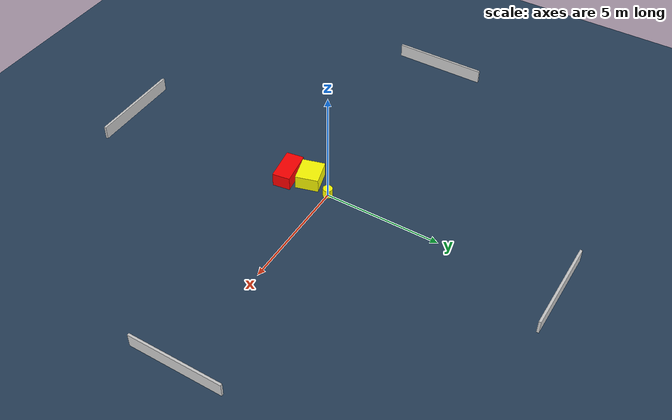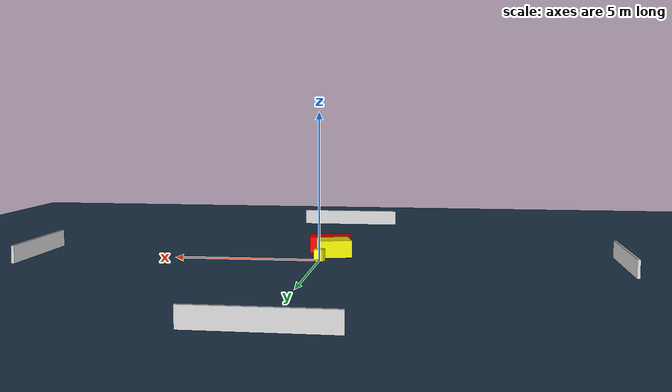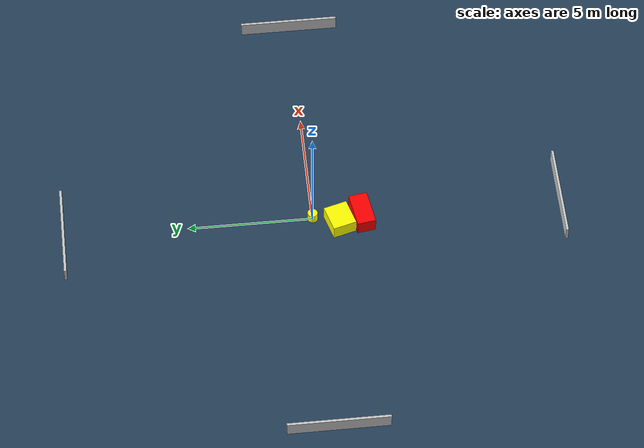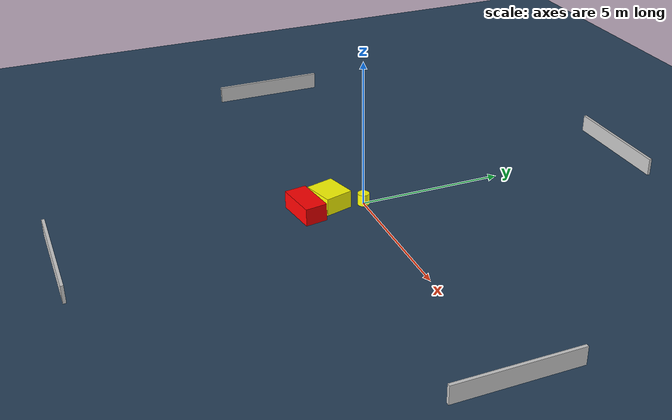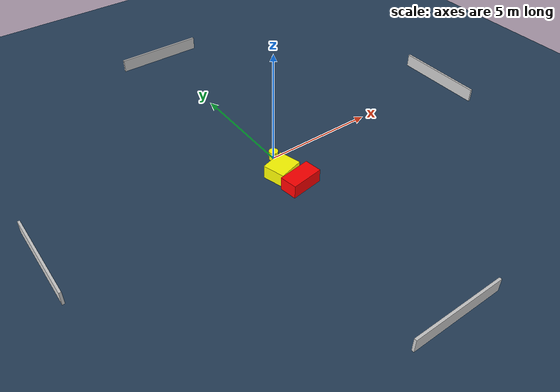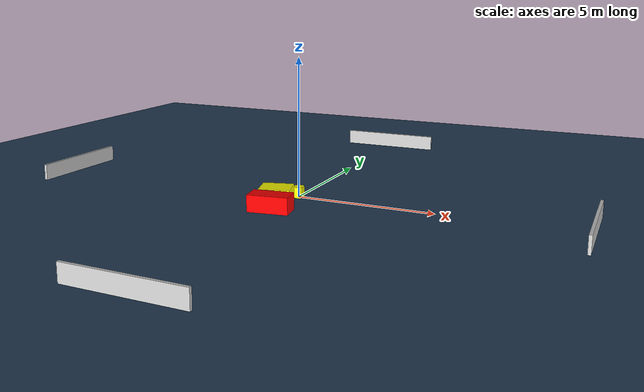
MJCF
<?xml version="1.0" ?>
<mujoco model="generated_environment">
  <option timestep="0.01" integrator="RK4" cone="elliptic"/>
  <default>
    <geom density="1"/>
  </default>
  <asset>
    <texture builtin="gradient" height="3072" name="skybox" rgb1="0.3 0.5 0.7" rgb2="0 0 0" type="skybox" width="512"/>
    <texture builtin="checker" height="300" name="groundplane" rgb1="0.2 0.3 0.4" rgb2="0.1 0.2 0.3" type="2d" width="300"/>
    <material name="groundplane" reflectance="0.2" texrepeat="5 5" texture="groundplane"/>
  </asset>
  <worldbody>
    <light dir="0 0 -1" directional="true" pos="0 0 1.5"/>
    <geom condim="3" friction="0.5 0.005 0.001" material="groundplane" name="floor" pos="0 0 0" size="0 0 0.05" type="plane"/>
    <body name="walls">
      <geom name="wall_1" condim="4" pos="-10.0 0.0 0.3" rgba="0.800000011920929 0.800000011920929 0.800000011920929 1.0" size="0.05 2.0 0.3" type="box"/>
      <geom name="wall_2" condim="4" pos="10.0 0.0 0.3" rgba="0.800000011920929 0.800000011920929 0.800000011920929 1.0" size="0.05 2.0 0.3" type="box"/>
      <geom name="wall_3" condim="4" pos="0.0 -10.0 0.3" rgba="0.800000011920929 0.800000011920929 0.800000011920929 1.0" size="2.0 0.05 0.3" type="box"/>
      <geom name="wall_4" condim="4" pos="0.0 10.0 0.3" rgba="0.800000011920929 0.800000011920929 0.800000011920929 1.0" size="2.0 0.05 0.3" type="box"/>
    </body>
    <body name="robot">
      <joint name="joint_x" type="slide" pos="0 0 0" axis="1 0 0"/>
      <joint name="joint_y" type="slide" pos="0 0 0" axis="0 1 0"/>
      <geom name="robot" type="cylinder" pos="0.0 0.0 0.2" size="0.2 0.2 0.0" mass="5.0" friction="1.0 0.005 0.0001" condim="4" rgba="1.0 1.0 0.0 1.0"/>
    </body>
    <body name="obstacle_1_movable">
      <geom name="obstacle_1_movable" condim="4" pos="-0.3633487770118672 -1.064908764776669 0.3" euler="0 0 195.8069002785018" friction="0.0 0.005 0.001" rgba="1.0 1.0 0.0 1.0" size="0.5524067666105992 0.4849698000892655 0.3" type="box" mass="0.1"/>
      <joint type="free"/>
    </body>
    <body name="obstacle_2_static">
      <geom name="obstacle_2_static" condim="4" pos="-0.11535902559157746 -1.9828472635760657 0.3" euler="0 0 8.646993558633413" friction="0.0 0.005 0.001" rgba="1.0 0.0 0.0 1.0" size="0.7197665095364771 0.37620866155285776 0.3" type="box"/>
    </body>
  </worldbody>
  <actuator>
    <motor name="actuator_x" joint="joint_x" gear="1" ctrlrange="-1 1"/>
    <motor name="actuator_y" joint="joint_y" gear="1" ctrlrange="-1 1"/>
  </actuator>
</mujoco>
